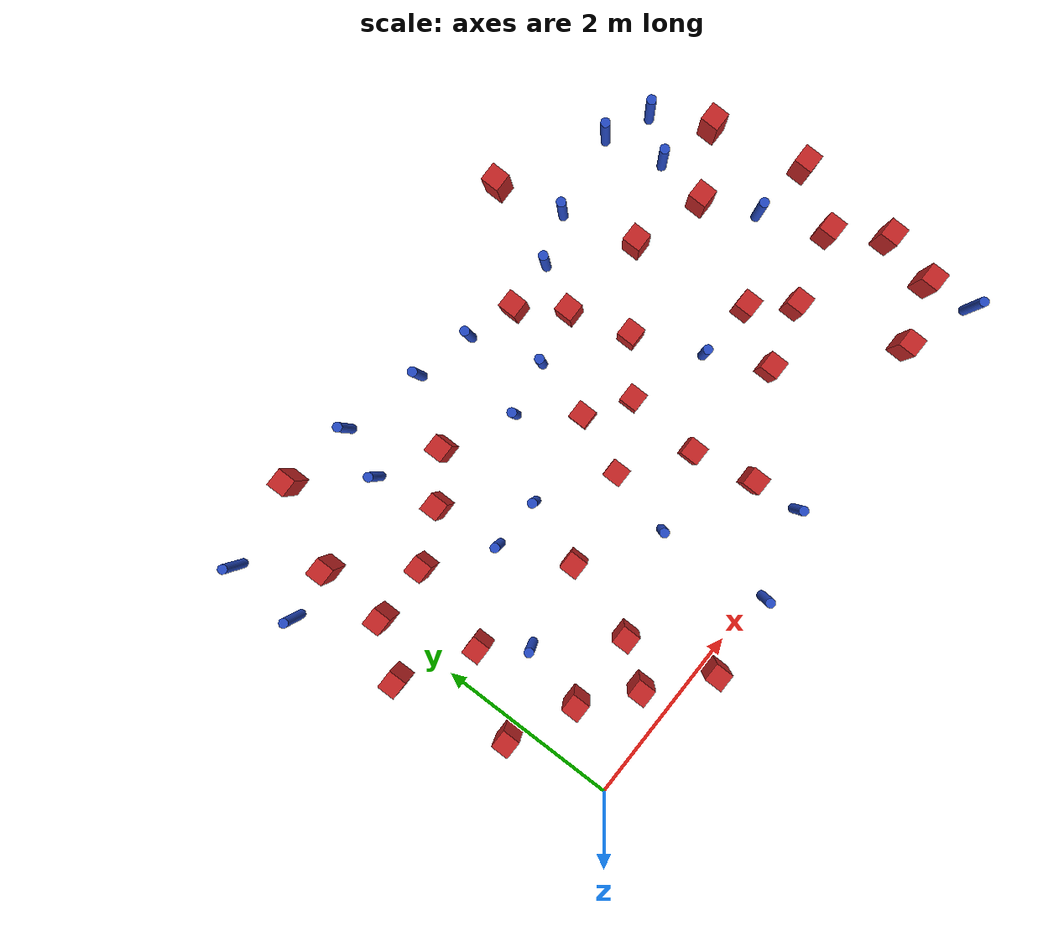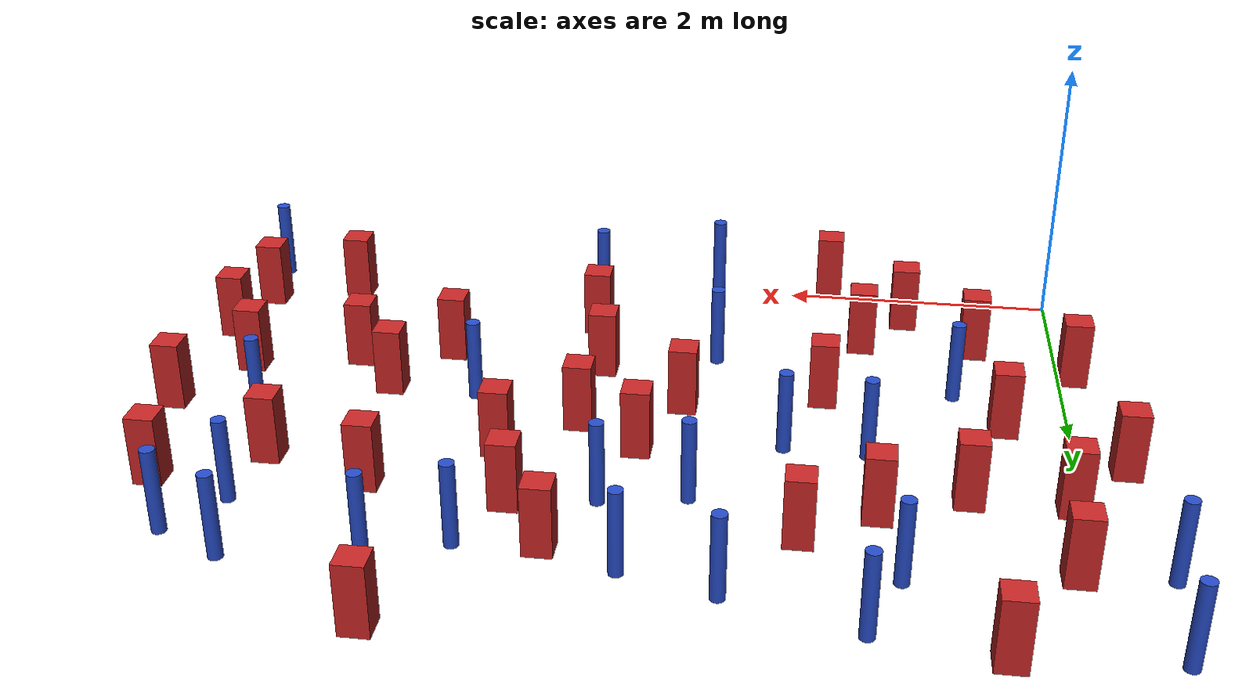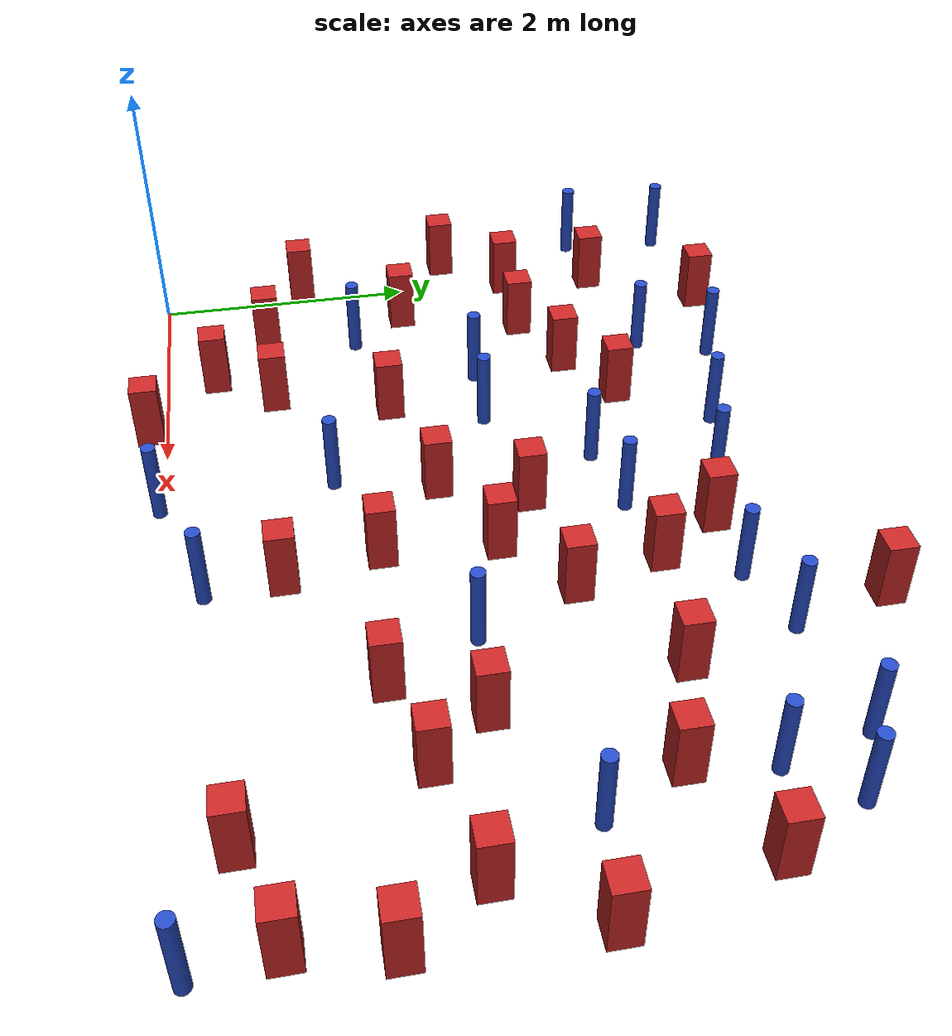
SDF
<sdf version="1.6">
 <model name="dense_45">
  <model name="square_post_obstacle5">
   <static>true</static>
   <pose>-0.324473289553 2.40058144093 -6.11067671241e-07 -5.50515727128e-06 -8.79689657224e-07 2.37013304536e-05</pose>
   <link name="link">
    <pose>0 0 0.25 0 -0 0</pose>
    <inertial>
     <mass>100</mass>
     <inertia>
      <ixx>0.166667</ixx>
      <ixy>0</ixy>
      <ixz>0</ixz>
      <iyy>0.166667</iyy>
      <iyz>0</iyz>
      <izz>0.166667</izz>
     </inertia>
    </inertial>
    <collision name="collision"><geometry><box><size>.2 .2 .5</size></box></geometry></collision>
    <visual name="visual">
     <geometry><box><size>.2 .2 .5</size></box></geometry>
     <material>
      <script><name>Gazebo/Red</name><uri>file://media/materials/scripts/gazebo.material</uri></script>
     </material>
    </visual>
   </link>
  </model>
  <model name="square_post_obstacle10">
   <static>true</static>
   <pose>5.50780573705 0.390450183729 -6.11067671241e-07 -5.50515727128e-06 -8.79689657224e-07 2.37013304536e-05</pose>
   <link name="link">
    <pose>0 0 0.25 0 -0 0</pose>
    <inertial>
     <mass>100</mass>
     <inertia>
      <ixx>0.166667</ixx>
      <ixy>0</ixy>
      <ixz>0</ixz>
      <iyy>0.166667</iyy>
      <iyz>0</iyz>
      <izz>0.166667</izz>
     </inertia>
    </inertial>
    <collision name="collision"><geometry><box><size>.2 .2 .5</size></box></geometry></collision>
    <visual name="visual">
     <geometry><box><size>.2 .2 .5</size></box></geometry>
     <material>
      <script><name>Gazebo/Red</name><uri>file://media/materials/scripts/gazebo.material</uri></script>
     </material>
    </visual>
   </link>
  </model>
  <model name="square_post_obstacle17">
   <static>true</static>
   <pose>0.452096644174 1.9528965727 -6.11067671241e-07 -5.50515727128e-06 -8.79689657224e-07 2.37013304536e-05</pose>
   <link name="link">
    <pose>0 0 0.25 0 -0 0</pose>
    <inertial>
     <mass>100</mass>
     <inertia>
      <ixx>0.166667</ixx>
      <ixy>0</ixy>
      <ixz>0</ixz>
      <iyy>0.166667</iyy>
      <iyz>0</iyz>
      <izz>0.166667</izz>
     </inertia>
    </inertial>
    <collision name="collision"><geometry><box><size>.2 .2 .5</size></box></geometry></collision>
    <visual name="visual">
     <geometry><box><size>.2 .2 .5</size></box></geometry>
     <material>
      <script><name>Gazebo/Red</name><uri>file://media/materials/scripts/gazebo.material</uri></script>
     </material>
    </visual>
   </link>
  </model>
  <model name="pole_obstacle14">
   <static>true</static>
   <pose>2.88527145606 3.95405018933 -9.47619616065e-06 5.49618799738e-07 2.36310414038e-07 -1.55090534814e-07</pose>
   <link name="link">
    <pose>0 0 0.3 0 -0 0</pose>
    <inertial>
     <mass>1</mass>
     <inertia><ixx>0.145833</ixx><ixy>0</ixy><ixz>0</ixz><iyy>0.145833</iyy><iyz>0</iyz><izz>0.125</izz></inertia>
    </inertial>
    <collision name="collision">
     <geometry><cylinder><radius>0.05</radius><length>.6</length></cylinder></geometry>
    </collision>
    <visual name="visual">
     <geometry><cylinder><radius>0.05</radius><length>.6</length></cylinder></geometry>
     <material>
      <script><name>Gazebo/Blue</name><uri>file://media/materials/scripts/gazebo.material</uri></script>
     </material>
    </visual>
   </link>
  </model>
  <model name="square_post_obstacle23">
   <static>true</static>
   <pose>5.94209555654 1.71884393342 -6.11067671241e-07 -5.50515727128e-06 -8.79689657224e-07 2.37013304536e-05</pose>
   <link name="link">
    <pose>0 0 0.25 0 -0 0</pose>
    <inertial>
     <mass>100</mass>
     <inertia>
      <ixx>0.166667</ixx>
      <ixy>0</ixy>
      <ixz>0</ixz>
      <iyy>0.166667</iyy>
      <iyz>0</iyz>
      <izz>0.166667</izz>
     </inertia>
    </inertial>
    <collision name="collision"><geometry><box><size>.2 .2 .5</size></box></geometry></collision>
    <visual name="visual">
     <geometry><box><size>.2 .2 .5</size></box></geometry>
     <material>
      <script><name>Gazebo/Red</name><uri>file://media/materials/scripts/gazebo.material</uri></script>
     </material>
    </visual>
   </link>
  </model>
  <model name="pole_obstacle24">
   <static>true</static>
   <pose>0.778635932585 1.52791973171 -9.47619616065e-06 5.49618799738e-07 2.36310414061e-07 -1.55090534801e-07</pose>
   <link name="link">
    <pose>0 0 0.3 0 -0 0</pose>
    <inertial>
     <mass>1</mass>
     <inertia><ixx>0.145833</ixx><ixy>0</ixy><ixz>0</ixz><iyy>0.145833</iyy><iyz>0</iyz><izz>0.125</izz></inertia>
    </inertial>
    <collision name="collision">
     <geometry><cylinder><radius>0.05</radius><length>.6</length></cylinder></geometry>
    </collision>
    <visual name="visual">
     <geometry><cylinder><radius>0.05</radius><length>.6</length></cylinder></geometry>
     <material>
      <script><name>Gazebo/Blue</name><uri>file://media/materials/scripts/gazebo.material</uri></script>
     </material>
    </visual>
   </link>
  </model>
  <model name="pole_obstacle25">
   <static>true</static>
   <pose>5.67734615379 2.39886731722 -9.47619616065e-06 5.49618799738e-07 2.36310414051e-07 -1.55090534805e-07</pose>
   <link name="link">
    <pose>0 0 0.3 0 -0 0</pose>
    <inertial>
     <mass>1</mass>
     <inertia><ixx>0.145833</ixx><ixy>0</ixy><ixz>0</ixz><iyy>0.145833</iyy><iyz>0</iyz><izz>0.125</izz></inertia>
    </inertial>
    <collision name="collision">
     <geometry><cylinder><radius>0.05</radius><length>.6</length></cylinder></geometry>
    </collision>
    <visual name="visual">
     <geometry><cylinder><radius>0.05</radius><length>.6</length></cylinder></geometry>
     <material>
      <script><name>Gazebo/Blue</name><uri>file://media/materials/scripts/gazebo.material</uri></script>
     </material>
    </visual>
   </link>
  </model>
  <model name="pole_obstacle28">
   <static>true</static>
   <pose>1.38512745922 2.41913687791 -9.47619616065e-06 5.49618799737e-07 2.36310414062e-07 -1.55090534798e-07</pose>
   <link name="link">
    <pose>0 0 0.3 0 -0 0</pose>
    <inertial>
     <mass>1</mass>
     <inertia><ixx>0.145833</ixx><ixy>0</ixy><ixz>0</ixz><iyy>0.145833</iyy><iyz>0</iyz><izz>0.125</izz></inertia>
    </inertial>
    <collision name="collision">
     <geometry><cylinder><radius>0.05</radius><length>.6</length></cylinder></geometry>
    </collision>
    <visual name="visual">
     <geometry><cylinder><radius>0.05</radius><length>.6</length></cylinder></geometry>
     <material>
      <script><name>Gazebo/Blue</name><uri>file://media/materials/scripts/gazebo.material</uri></script>
     </material>
    </visual>
   </link>
  </model>
  <model name="square_post_obstacle36">
   <static>true</static>
   <pose>2.94512084626 2.54637675593 -6.11067671241e-07 -5.50515727128e-06 -8.79689657224e-07 2.37013304536e-05</pose>
   <link name="link">
    <pose>0 0 0.25 0 -0 0</pose>
    <inertial>
     <mass>100</mass>
     <inertia>
      <ixx>0.166667</ixx>
      <ixy>0</ixy>
      <ixz>0</ixz>
      <iyy>0.166667</iyy>
      <iyz>0</iyz>
      <izz>0.166667</izz>
     </inertia>
    </inertial>
    <collision name="collision"><geometry><box><size>.2 .2 .5</size></box></geometry></collision>
    <visual name="visual">
     <geometry><box><size>.2 .2 .5</size></box></geometry>
     <material>
      <script><name>Gazebo/Red</name><uri>file://media/materials/scripts/gazebo.material</uri></script>
     </material>
    </visual>
   </link>
  </model>
  <model name="square_post_obstacle39">
   <static>true</static>
   <pose>4.27816305701 4.66760149722 -6.11067671241e-07 -5.50515727128e-06 -8.79689657224e-07 2.37013304536e-05</pose>
   <link name="link">
    <pose>0 0 0.25 0 -0 0</pose>
    <inertial>
     <mass>100</mass>
     <inertia>
      <ixx>0.166667</ixx>
      <ixy>0</ixy>
      <ixz>0</ixz>
      <iyy>0.166667</iyy>
      <iyz>0</iyz>
      <izz>0.166667</izz>
     </inertia>
    </inertial>
    <collision name="collision"><geometry><box><size>.2 .2 .5</size></box></geometry></collision>
    <visual name="visual">
     <geometry><box><size>.2 .2 .5</size></box></geometry>
     <material>
      <script><name>Gazebo/Red</name><uri>file://media/materials/scripts/gazebo.material</uri></script>
     </material>
    </visual>
   </link>
  </model>
  <model name="pole_obstacle45">
   <static>true</static>
   <pose>2.25597203753 4.11710269118 -9.47619616065e-06 5.49618799738e-07 2.3631041406e-07 -1.55090534801e-07</pose>
   <link name="link">
    <pose>0 0 0.3 0 -0 0</pose>
    <inertial>
     <mass>1</mass>
     <inertia><ixx>0.145833</ixx><ixy>0</ixy><ixz>0</ixz><iyy>0.145833</iyy><iyz>0</iyz><izz>0.125</izz></inertia>
    </inertial>
    <collision name="collision">
     <geometry><cylinder><radius>0.05</radius><length>.6</length></cylinder></geometry>
    </collision>
    <visual name="visual">
     <geometry><cylinder><radius>0.05</radius><length>.6</length></cylinder></geometry>
     <material>
      <script><name>Gazebo/Blue</name><uri>file://media/materials/scripts/gazebo.material</uri></script>
     </material>
    </visual>
   </link>
  </model>
  <model name="square_post_obstacle47">
   <static>true</static>
   <pose>1.71041923077 -0.116103067744 -6.11067671241e-07 -5.50515727128e-06 -8.79689657224e-07 2.37013304536e-05</pose>
   <link name="link">
    <pose>0 0 0.25 0 -0 0</pose>
    <inertial>
     <mass>100</mass>
     <inertia>
      <ixx>0.166667</ixx>
      <ixy>0</ixy>
      <ixz>0</ixz>
      <iyy>0.166667</iyy>
      <iyz>0</iyz>
      <izz>0.166667</izz>
     </inertia>
    </inertial>
    <collision name="collision"><geometry><box><size>.2 .2 .5</size></box></geometry></collision>
    <visual name="visual">
     <geometry><box><size>.2 .2 .5</size></box></geometry>
     <material>
      <script><name>Gazebo/Red</name><uri>file://media/materials/scripts/gazebo.material</uri></script>
     </material>
    </visual>
   </link>
  </model>
  <model name="square_post_obstacle52">
   <static>true</static>
   <pose>0.0740207557246 2.90392620304 -6.11067671241e-07 -5.50515727128e-06 -8.79689657224e-07 2.37013304536e-05</pose>
   <link name="link">
    <pose>0 0 0.25 0 -0 0</pose>
    <inertial>
     <mass>100</mass>
     <inertia>
      <ixx>0.166667</ixx>
      <ixy>0</ixy>
      <ixz>0</ixz>
      <iyy>0.166667</iyy>
      <iyz>0</iyz>
      <izz>0.166667</izz>
     </inertia>
    </inertial>
    <collision name="collision"><geometry><box><size>.2 .2 .5</size></box></geometry></collision>
    <visual name="visual">
     <geometry><box><size>.2 .2 .5</size></box></geometry>
     <material>
      <script><name>Gazebo/Red</name><uri>file://media/materials/scripts/gazebo.material</uri></script>
     </material>
    </visual>
   </link>
  </model>
  <model name="pole_obstacle55">
   <static>true</static>
   <pose>2.60699325427 -0.0461881529547 -9.47619616065e-06 5.49618799738e-07 2.36310414077e-07 -1.55090534792e-07</pose>
   <link name="link">
    <pose>0 0 0.3 0 -0 0</pose>
    <inertial>
     <mass>1</mass>
     <inertia><ixx>0.145833</ixx><ixy>0</ixy><ixz>0</ixz><iyy>0.145833</iyy><iyz>0</iyz><izz>0.125</izz></inertia>
    </inertial>
    <collision name="collision">
     <geometry><cylinder><radius>0.05</radius><length>.6</length></cylinder></geometry>
    </collision>
    <visual name="visual">
     <geometry><cylinder><radius>0.05</radius><length>.6</length></cylinder></geometry>
     <material>
      <script><name>Gazebo/Blue</name><uri>file://media/materials/scripts/gazebo.material</uri></script>
     </material>
    </visual>
   </link>
  </model>
  <model name="square_post_obstacle58">
   <static>true</static>
   <pose>1.4436443372 0.837134800897 -6.11067671241e-07 -5.50515727128e-06 -8.79689657224e-07 2.37013304536e-05</pose>
   <link name="link">
    <pose>0 0 0.25 0 -0 0</pose>
    <inertial>
     <mass>100</mass>
     <inertia>
      <ixx>0.166667</ixx>
      <ixy>0</ixy>
      <ixz>0</ixz>
      <iyy>0.166667</iyy>
      <iyz>0</iyz>
      <izz>0.166667</izz>
     </inertia>
    </inertial>
    <collision name="collision"><geometry><box><size>.2 .2 .5</size></box></geometry></collision>
    <visual name="visual">
     <geometry><box><size>.2 .2 .5</size></box></geometry>
     <material>
      <script><name>Gazebo/Red</name><uri>file://media/materials/scripts/gazebo.material</uri></script>
     </material>
    </visual>
   </link>
  </model>
  <model name="pole_obstacle59">
   <static>true</static>
   <pose>3.1157308667 3.2070856454 -9.47619616065e-06 5.49618799737e-07 2.36310414051e-07 -1.55090534807e-07</pose>
   <link name="link">
    <pose>0 0 0.3 0 -0 0</pose>
    <inertial>
     <mass>1</mass>
     <inertia><ixx>0.145833</ixx><ixy>0</ixy><ixz>0</ixz><iyy>0.145833</iyy><iyz>0</iyz><izz>0.125</izz></inertia>
    </inertial>
    <collision name="collision">
     <geometry><cylinder><radius>0.05</radius><length>.6</length></cylinder></geometry>
    </collision>
    <visual name="visual">
     <geometry><cylinder><radius>0.05</radius><length>.6</length></cylinder></geometry>
     <material>
      <script><name>Gazebo/Blue</name><uri>file://media/materials/scripts/gazebo.material</uri></script>
     </material>
    </visual>
   </link>
  </model>
  <model name="pole_obstacle61">
   <static>true</static>
   <pose>4.46425785206 3.98095553768 -9.47619616065e-06 5.49618799737e-07 2.36310414054e-07 -1.55090534804e-07</pose>
   <link name="link">
    <pose>0 0 0.3 0 -0 0</pose>
    <inertial>
     <mass>1</mass>
     <inertia><ixx>0.145833</ixx><ixy>0</ixy><ixz>0</ixz><iyy>0.145833</iyy><iyz>0</iyz><izz>0.125</izz></inertia>
    </inertial>
    <collision name="collision">
     <geometry><cylinder><radius>0.05</radius><length>.6</length></cylinder></geometry>
    </collision>
    <visual name="visual">
     <geometry><cylinder><radius>0.05</radius><length>.6</length></cylinder></geometry>
     <material>
      <script><name>Gazebo/Blue</name><uri>file://media/materials/scripts/gazebo.material</uri></script>
     </material>
    </visual>
   </link>
  </model>
  <model name="square_post_obstacle70">
   <static>true</static>
   <pose>3.33712573603 1.44381234183 -6.11067671241e-07 -5.50515727128e-06 -8.79689657224e-07 2.37013304536e-05</pose>
   <link name="link">
    <pose>0 0 0.25 0 -0 0</pose>
    <inertial>
     <mass>100</mass>
     <inertia>
      <ixx>0.166667</ixx>
      <ixy>0</ixy>
      <ixz>0</ixz>
      <iyy>0.166667</iyy>
      <iyz>0</iyz>
      <izz>0.166667</izz>
     </inertia>
    </inertial>
    <collision name="collision"><geometry><box><size>.2 .2 .5</size></box></geometry></collision>
    <visual name="visual">
     <geometry><box><size>.2 .2 .5</size></box></geometry>
     <material>
      <script><name>Gazebo/Red</name><uri>file://media/materials/scripts/gazebo.material</uri></script>
     </material>
    </visual>
   </link>
  </model>
  <model name="square_post_obstacle78">
   <static>true</static>
   <pose>6.0857387854 3.31064271042 -6.11067671241e-07 -5.50515727128e-06 -8.79689657224e-07 2.37013304536e-05</pose>
   <link name="link">
    <pose>0 0 0.25 0 -0 0</pose>
    <inertial>
     <mass>100</mass>
     <inertia>
      <ixx>0.166667</ixx>
      <ixy>0</ixy>
      <ixz>0</ixz>
      <iyy>0.166667</iyy>
      <iyz>0</iyz>
      <izz>0.166667</izz>
     </inertia>
    </inertial>
    <collision name="collision"><geometry><box><size>.2 .2 .5</size></box></geometry></collision>
    <visual name="visual">
     <geometry><box><size>.2 .2 .5</size></box></geometry>
     <material>
      <script><name>Gazebo/Red</name><uri>file://media/materials/scripts/gazebo.material</uri></script>
     </material>
    </visual>
   </link>
  </model>
  <model name="pole_obstacle88">
   <static>true</static>
   <pose>1.17429539053 3.82498907046 -9.47619616065e-06 5.49618799737e-07 2.36310414062e-07 -1.55090534798e-07</pose>
   <link name="link">
    <pose>0 0 0.3 0 -0 0</pose>
    <inertial>
     <mass>1</mass>
     <inertia><ixx>0.145833</ixx><ixy>0</ixy><ixz>0</ixz><iyy>0.145833</iyy><iyz>0</iyz><izz>0.125</izz></inertia>
    </inertial>
    <collision name="collision">
     <geometry><cylinder><radius>0.05</radius><length>.6</length></cylinder></geometry>
    </collision>
    <visual name="visual">
     <geometry><cylinder><radius>0.05</radius><length>.6</length></cylinder></geometry>
     <material>
      <script><name>Gazebo/Blue</name><uri>file://media/materials/scripts/gazebo.material</uri></script>
     </material>
    </visual>
   </link>
  </model>
  <model name="pole_obstacle101">
   <static>true</static>
   <pose>3.51958506289 0.244891313505 -9.47619616065e-06 5.49618799737e-07 2.36310414072e-07 -1.55090534794e-07</pose>
   <link name="link">
    <pose>0 0 0.3 0 -0 0</pose>
    <inertial>
     <mass>1</mass>
     <inertia><ixx>0.145833</ixx><ixy>0</ixy><ixz>0</ixz><iyy>0.145833</iyy><iyz>0</iyz><izz>0.125</izz></inertia>
    </inertial>
    <collision name="collision">
     <geometry><cylinder><radius>0.05</radius><length>.6</length></cylinder></geometry>
    </collision>
    <visual name="visual">
     <geometry><cylinder><radius>0.05</radius><length>.6</length></cylinder></geometry>
     <material>
      <script><name>Gazebo/Blue</name><uri>file://media/materials/scripts/gazebo.material</uri></script>
     </material>
    </visual>
   </link>
  </model>
  <model name="square_post_obstacle104">
   <static>true</static>
   <pose>3.88849034571 2.66416063155 -6.11067671241e-07 -5.50515727128e-06 -8.79689657224e-07 2.37013304536e-05</pose>
   <link name="link">
    <pose>0 0 0.25 0 -0 0</pose>
    <inertial>
     <mass>100</mass>
     <inertia>
      <ixx>0.166667</ixx>
      <ixy>0</ixy>
      <ixz>0</ixz>
      <iyy>0.166667</iyy>
      <iyz>0</iyz>
      <izz>0.166667</izz>
     </inertia>
    </inertial>
    <collision name="collision"><geometry><box><size>.2 .2 .5</size></box></geometry></collision>
    <visual name="visual">
     <geometry><box><size>.2 .2 .5</size></box></geometry>
     <material>
      <script><name>Gazebo/Red</name><uri>file://media/materials/scripts/gazebo.material</uri></script>
     </material>
    </visual>
   </link>
  </model>
  <model name="pole_obstacle119">
   <static>true</static>
   <pose>2.53491660991 3.10041996345 -9.47619616065e-06 5.49618799737e-07 2.36310414051e-07 -1.55090534807e-07</pose>
   <link name="link">
    <pose>0 0 0.3 0 -0 0</pose>
    <inertial>
     <mass>1</mass>
     <inertia><ixx>0.145833</ixx><ixy>0</ixy><ixz>0</ixz><iyy>0.145833</iyy><iyz>0</iyz><izz>0.125</izz></inertia>
    </inertial>
    <collision name="collision">
     <geometry><cylinder><radius>0.05</radius><length>.6</length></cylinder></geometry>
    </collision>
    <visual name="visual">
     <geometry><cylinder><radius>0.05</radius><length>.6</length></cylinder></geometry>
     <material>
      <script><name>Gazebo/Blue</name><uri>file://media/materials/scripts/gazebo.material</uri></script>
     </material>
    </visual>
   </link>
  </model>
  <model name="pole_obstacle125">
   <static>true</static>
   <pose>3.94111457804 3.79660329882 -9.47619616065e-06 5.49618799737e-07 2.36310414051e-07 -1.55090534807e-07</pose>
   <link name="link">
    <pose>0 0 0.3 0 -0 0</pose>
    <inertial>
     <mass>1</mass>
     <inertia><ixx>0.145833</ixx><ixy>0</ixy><ixz>0</ixz><iyy>0.145833</iyy><iyz>0</iyz><izz>0.125</izz></inertia>
    </inertial>
    <collision name="collision">
     <geometry><cylinder><radius>0.05</radius><length>.6</length></cylinder></geometry>
    </collision>
    <visual name="visual">
     <geometry><cylinder><radius>0.05</radius><length>.6</length></cylinder></geometry>
     <material>
      <script><name>Gazebo/Blue</name><uri>file://media/materials/scripts/gazebo.material</uri></script>
     </material>
    </visual>
   </link>
  </model>
  <model name="square_post_obstacle116">
   <static>true</static>
   <pose>1.32067235575 3.14931667792 -6.11067671241e-07 -5.50515727128e-06 -8.79689657224e-07 2.37013304536e-05</pose>
   <link name="link">
    <pose>0 0 0.25 0 -0 0</pose>
    <inertial>
     <mass>100</mass>
     <inertia>
      <ixx>0.166667</ixx>
      <ixy>0</ixy>
      <ixz>0</ixz>
      <iyy>0.166667</iyy>
      <iyz>0</iyz>
      <izz>0.166667</izz>
     </inertia>
    </inertial>
    <collision name="collision"><geometry><box><size>.2 .2 .5</size></box></geometry></collision>
    <visual name="visual">
     <geometry><box><size>.2 .2 .5</size></box></geometry>
     <material>
      <script><name>Gazebo/Red</name><uri>file://media/materials/scripts/gazebo.material</uri></script>
     </material>
    </visual>
   </link>
  </model>
  <model name="square_post_obstacle117">
   <static>true</static>
   <pose>1.70868719034 1.70071623866 -6.11067671241e-07 -5.50515727128e-06 -8.79689657224e-07 2.37013304536e-05</pose>
   <link name="link">
    <pose>0 0 0.25 0 -0 0</pose>
    <inertial>
     <mass>100</mass>
     <inertia>
      <ixx>0.166667</ixx>
      <ixy>0</ixy>
      <ixz>0</ixz>
      <iyy>0.166667</iyy>
      <iyz>0</iyz>
      <izz>0.166667</izz>
     </inertia>
    </inertial>
    <collision name="collision"><geometry><box><size>.2 .2 .5</size></box></geometry></collision>
    <visual name="visual">
     <geometry><box><size>.2 .2 .5</size></box></geometry>
     <material>
      <script><name>Gazebo/Red</name><uri>file://media/materials/scripts/gazebo.material</uri></script>
     </material>
    </visual>
   </link>
  </model>
  <model name="pole_obstacle138">
   <static>true</static>
   <pose>1.95520005849 2.39688884807 -9.47619616065e-06 5.49618799737e-07 2.36310414059e-07 -1.550905348e-07</pose>
   <link name="link">
    <pose>0 0 0.3 0 -0 0</pose>
    <inertial>
     <mass>1</mass>
     <inertia><ixx>0.145833</ixx><ixy>0</ixy><ixz>0</ixz><iyy>0.145833</iyy><iyz>0</iyz><izz>0.125</izz></inertia>
    </inertial>
    <collision name="collision">
     <geometry><cylinder><radius>0.05</radius><length>.6</length></cylinder></geometry>
    </collision>
    <visual name="visual">
     <geometry><cylinder><radius>0.05</radius><length>.6</length></cylinder></geometry>
     <material>
      <script><name>Gazebo/Blue</name><uri>file://media/materials/scripts/gazebo.material</uri></script>
     </material>
    </visual>
   </link>
  </model>
  <model name="square_post_obstacle131">
   <static>true</static>
   <pose>4.6648430913 3.19403390546 -6.11067671241e-07 -5.50515727128e-06 -8.79689657224e-07 2.37013304536e-05</pose>
   <link name="link">
    <pose>0 0 0.25 0 -0 0</pose>
    <inertial>
     <mass>100</mass>
     <inertia>
      <ixx>0.166667</ixx>
      <ixy>0</ixy>
      <ixz>0</ixz>
      <iyy>0.166667</iyy>
      <iyz>0</iyz>
      <izz>0.166667</izz>
     </inertia>
    </inertial>
    <collision name="collision"><geometry><box><size>.2 .2 .5</size></box></geometry></collision>
    <visual name="visual">
     <geometry><box><size>.2 .2 .5</size></box></geometry>
     <material>
      <script><name>Gazebo/Red</name><uri>file://media/materials/scripts/gazebo.material</uri></script>
     </material>
    </visual>
   </link>
  </model>
  <model name="pole_obstacle151">
   <static>true</static>
   <pose>2.51562937432 1.19420720858 -9.47619616065e-06 5.49618799737e-07 2.36310414072e-07 -1.55090534793e-07</pose>
   <link name="link">
    <pose>0 0 0.3 0 -0 0</pose>
    <inertial>
     <mass>1</mass>
     <inertia><ixx>0.145833</ixx><ixy>0</ixy><ixz>0</ixz><iyy>0.145833</iyy><iyz>0</iyz><izz>0.125</izz></inertia>
    </inertial>
    <collision name="collision">
     <geometry><cylinder><radius>0.05</radius><length>.6</length></cylinder></geometry>
    </collision>
    <visual name="visual">
     <geometry><cylinder><radius>0.05</radius><length>.6</length></cylinder></geometry>
     <material>
      <script><name>Gazebo/Blue</name><uri>file://media/materials/scripts/gazebo.material</uri></script>
     </material>
    </visual>
   </link>
  </model>
  <model name="square_post_obstacle149">
   <static>true</static>
   <pose>6.32361026845 2.32051091555 -6.11067671241e-07 -5.50515727128e-06 -8.79689657224e-07 2.37013304536e-05</pose>
   <link name="link">
    <pose>0 0 0.25 0 -0 0</pose>
    <inertial>
     <mass>100</mass>
     <inertia>
      <ixx>0.166667</ixx>
      <ixy>0</ixy>
      <ixz>0</ixz>
      <iyy>0.166667</iyy>
      <iyz>0</iyz>
      <izz>0.166667</izz>
     </inertia>
    </inertial>
    <collision name="collision"><geometry><box><size>.2 .2 .5</size></box></geometry></collision>
    <visual name="visual">
     <geometry><box><size>.2 .2 .5</size></box></geometry>
     <material>
      <script><name>Gazebo/Red</name><uri>file://media/materials/scripts/gazebo.material</uri></script>
     </material>
    </visual>
   </link>
  </model>
  <model name="pole_obstacle159">
   <static>true</static>
   <pose>5.34729034997 4.11215038889 -9.47619616065e-06 5.49618799737e-07 2.36310414037e-07 -1.55090534814e-07</pose>
   <link name="link">
    <pose>0 0 0.3 0 -0 0</pose>
    <inertial>
     <mass>1</mass>
     <inertia><ixx>0.145833</ixx><ixy>0</ixy><ixz>0</ixz><iyy>0.145833</iyy><iyz>0</iyz><izz>0.125</izz></inertia>
    </inertial>
    <collision name="collision">
     <geometry><cylinder><radius>0.05</radius><length>.6</length></cylinder></geometry>
    </collision>
    <visual name="visual">
     <geometry><cylinder><radius>0.05</radius><length>.6</length></cylinder></geometry>
     <material>
      <script><name>Gazebo/Blue</name><uri>file://media/materials/scripts/gazebo.material</uri></script>
     </material>
    </visual>
   </link>
  </model>
  <model name="square_post_obstacle153">
   <static>true</static>
   <pose>3.38946890776 2.246996864 -6.11067671241e-07 -5.50515727128e-06 -8.79689657224e-07 2.37013304536e-05</pose>
   <link name="link">
    <pose>0 0 0.25 0 -0 0</pose>
    <inertial>
     <mass>100</mass>
     <inertia>
      <ixx>0.166667</ixx>
      <ixy>0</ixy>
      <ixz>0</ixz>
      <iyy>0.166667</iyy>
      <iyz>0</iyz>
      <izz>0.166667</izz>
     </inertia>
    </inertial>
    <collision name="collision"><geometry><box><size>.2 .2 .5</size></box></geometry></collision>
    <visual name="visual">
     <geometry><box><size>.2 .2 .5</size></box></geometry>
     <material>
      <script><name>Gazebo/Red</name><uri>file://media/materials/scripts/gazebo.material</uri></script>
     </material>
    </visual>
   </link>
  </model>
  <model name="square_post_obstacle154">
   <static>true</static>
   <pose>0.122038826333 3.64884651965 -6.11067671241e-07 -5.50515727128e-06 -8.79689657224e-07 2.37013304536e-05</pose>
   <link name="link">
    <pose>0 0 0.25 0 -0 0</pose>
    <inertial>
     <mass>100</mass>
     <inertia>
      <ixx>0.166667</ixx>
      <ixy>0</ixy>
      <ixz>0</ixz>
      <iyy>0.166667</iyy>
      <iyz>0</iyz>
      <izz>0.166667</izz>
     </inertia>
    </inertial>
    <collision name="collision"><geometry><box><size>.2 .2 .5</size></box></geometry></collision>
    <visual name="visual">
     <geometry><box><size>.2 .2 .5</size></box></geometry>
     <material>
      <script><name>Gazebo/Red</name><uri>file://media/materials/scripts/gazebo.material</uri></script>
     </material>
    </visual>
   </link>
  </model>
  <model name="square_post_obstacle155">
   <static>true</static>
   <pose>-0.102219710298 1.15093083028 -6.11067671241e-07 -5.50515727128e-06 -8.79689657224e-07 2.37013304536e-05</pose>
   <link name="link">
    <pose>0 0 0.25 0 -0 0</pose>
    <inertial>
     <mass>100</mass>
     <inertia>
      <ixx>0.166667</ixx>
      <ixy>0</ixy>
      <ixz>0</ixz>
      <iyy>0.166667</iyy>
      <iyz>0</iyz>
      <izz>0.166667</izz>
     </inertia>
    </inertial>
    <collision name="collision"><geometry><box><size>.2 .2 .5</size></box></geometry></collision>
    <visual name="visual">
     <geometry><box><size>.2 .2 .5</size></box></geometry>
     <material>
      <script><name>Gazebo/Red</name><uri>file://media/materials/scripts/gazebo.material</uri></script>
     </material>
    </visual>
   </link>
  </model>
  <model name="square_post_obstacle158">
   <static>true</static>
   <pose>4.49289017668 1.33861304581 -6.11067671241e-07 -5.50515727128e-06 -8.79689657224e-07 2.37013304536e-05</pose>
   <link name="link">
    <pose>0 0 0.25 0 -0 0</pose>
    <inertial>
     <mass>100</mass>
     <inertia>
      <ixx>0.166667</ixx>
      <ixy>0</ixy>
      <ixz>0</ixz>
      <iyy>0.166667</iyy>
      <iyz>0</iyz>
      <izz>0.166667</izz>
     </inertia>
    </inertial>
    <collision name="collision"><geometry><box><size>.2 .2 .5</size></box></geometry></collision>
    <visual name="visual">
     <geometry><box><size>.2 .2 .5</size></box></geometry>
     <material>
      <script><name>Gazebo/Red</name><uri>file://media/materials/scripts/gazebo.material</uri></script>
     </material>
    </visual>
   </link>
  </model>
  <model name="square_post_obstacle159">
   <static>true</static>
   <pose>3.47607828429 0.774870576373 -6.11067671241e-07 -5.50515727128e-06 -8.79689657224e-07 2.37013304536e-05</pose>
   <link name="link">
    <pose>0 0 0.25 0 -0 0</pose>
    <inertial>
     <mass>100</mass>
     <inertia>
      <ixx>0.166667</ixx>
      <ixy>0</ixy>
      <ixz>0</ixz>
      <iyy>0.166667</iyy>
      <iyz>0</iyz>
      <izz>0.166667</izz>
     </inertia>
    </inertial>
    <collision name="collision"><geometry><box><size>.2 .2 .5</size></box></geometry></collision>
    <visual name="visual">
     <geometry><box><size>.2 .2 .5</size></box></geometry>
     <material>
      <script><name>Gazebo/Red</name><uri>file://media/materials/scripts/gazebo.material</uri></script>
     </material>
    </visual>
   </link>
  </model>
  <model name="pole_obstacle168">
   <static>true</static>
   <pose>-0.411372506225 4.40053298909 -9.47619616065e-06 5.49618799737e-07 2.36310414065e-07 -1.55090534796e-07</pose>
   <link name="link">
    <pose>0 0 0.3 0 -0 0</pose>
    <inertial>
     <mass>1</mass>
     <inertia><ixx>0.145833</ixx><ixy>0</ixy><ixz>0</ixz><iyy>0.145833</iyy><iyz>0</iyz><izz>0.125</izz></inertia>
    </inertial>
    <collision name="collision">
     <geometry><cylinder><radius>0.05</radius><length>.6</length></cylinder></geometry>
    </collision>
    <visual name="visual">
     <geometry><cylinder><radius>0.05</radius><length>.6</length></cylinder></geometry>
     <material>
      <script><name>Gazebo/Blue</name><uri>file://media/materials/scripts/gazebo.material</uri></script>
     </material>
    </visual>
   </link>
  </model>
  <model name="pole_obstacle173">
   <static>true</static>
   <pose>-0.462500453812 3.60466164947 -9.47619616065e-06 5.49618799737e-07 2.36310414073e-07 -1.55090534793e-07</pose>
   <link name="link">
    <pose>0 0 0.3 0 -0 0</pose>
    <inertial>
     <mass>1</mass>
     <inertia><ixx>0.145833</ixx><ixy>0</ixy><ixz>0</ixz><iyy>0.145833</iyy><iyz>0</iyz><izz>0.125</izz></inertia>
    </inertial>
    <collision name="collision">
     <geometry><cylinder><radius>0.05</radius><length>.6</length></cylinder></geometry>
    </collision>
    <visual name="visual">
     <geometry><cylinder><radius>0.05</radius><length>.6</length></cylinder></geometry>
     <material>
      <script><name>Gazebo/Blue</name><uri>file://media/materials/scripts/gazebo.material</uri></script>
     </material>
    </visual>
   </link>
  </model>
  <model name="square_post_obstacle164">
   <static>true</static>
   <pose>3.39023469579 3.76610710695 -6.11067671241e-07 -5.50515727128e-06 -8.79689657224e-07 2.37013304536e-05</pose>
   <link name="link">
    <pose>0 0 0.25 0 -0 0</pose>
    <inertial>
     <mass>100</mass>
     <inertia>
      <ixx>0.166667</ixx>
      <ixy>0</ixy>
      <ixz>0</ixz>
      <iyy>0.166667</iyy>
      <iyz>0</iyz>
      <izz>0.166667</izz>
     </inertia>
    </inertial>
    <collision name="collision"><geometry><box><size>.2 .2 .5</size></box></geometry></collision>
    <visual name="visual">
     <geometry><box><size>.2 .2 .5</size></box></geometry>
     <material>
      <script><name>Gazebo/Red</name><uri>file://media/materials/scripts/gazebo.material</uri></script>
     </material>
    </visual>
   </link>
  </model>
  <model name="square_post_obstacle168">
   <static>true</static>
   <pose>6.15805234059 0.610590073645 -6.11067671241e-07 -5.50515727128e-06 -8.79689657224e-07 2.37013304536e-05</pose>
   <link name="link">
    <pose>0 0 0.25 0 -0 0</pose>
    <inertial>
     <mass>100</mass>
     <inertia>
      <ixx>0.166667</ixx>
      <ixy>0</ixy>
      <ixz>0</ixz>
      <iyy>0.166667</iyy>
      <iyz>0</iyz>
      <izz>0.166667</izz>
     </inertia>
    </inertial>
    <collision name="collision"><geometry><box><size>.2 .2 .5</size></box></geometry></collision>
    <visual name="visual">
     <geometry><box><size>.2 .2 .5</size></box></geometry>
     <material>
      <script><name>Gazebo/Red</name><uri>file://media/materials/scripts/gazebo.material</uri></script>
     </material>
    </visual>
   </link>
  </model>
  <model name="pole_obstacle179">
   <static>true</static>
   <pose>4.19909709715 1.95506096052 -9.47619616065e-06 5.49618799737e-07 2.36310414075e-07 -1.55090534793e-07</pose>
   <link name="link">
    <pose>0 0 0.3 0 -0 0</pose>
    <inertial>
     <mass>1</mass>
     <inertia><ixx>0.145833</ixx><ixy>0</ixy><ixz>0</ixz><iyy>0.145833</iyy><iyz>0</iyz><izz>0.125</izz></inertia>
    </inertial>
    <collision name="collision">
     <geometry><cylinder><radius>0.05</radius><length>.6</length></cylinder></geometry>
    </collision>
    <visual name="visual">
     <geometry><cylinder><radius>0.05</radius><length>.6</length></cylinder></geometry>
     <material>
      <script><name>Gazebo/Blue</name><uri>file://media/materials/scripts/gazebo.material</uri></script>
     </material>
    </visual>
   </link>
  </model>
  <model name="square_post_obstacle170">
   <static>true</static>
   <pose>4.82887079865 1.91430204378 -6.11067671241e-07 -5.50515727128e-06 -8.79689657224e-07 2.37013304536e-05</pose>
   <link name="link">
    <pose>0 0 0.25 0 -0 0</pose>
    <inertial>
     <mass>100</mass>
     <inertia>
      <ixx>0.166667</ixx>
      <ixy>0</ixy>
      <ixz>0</ixz>
      <iyy>0.166667</iyy>
      <iyz>0</iyz>
      <izz>0.166667</izz>
     </inertia>
    </inertial>
    <collision name="collision"><geometry><box><size>.2 .2 .5</size></box></geometry></collision>
    <visual name="visual">
     <geometry><box><size>.2 .2 .5</size></box></geometry>
     <material>
      <script><name>Gazebo/Red</name><uri>file://media/materials/scripts/gazebo.material</uri></script>
     </material>
    </visual>
   </link>
  </model>
  <model name="pole_obstacle185">
   <static>true</static>
   <pose>1.37696077413 4.3644454165 -9.47619616065e-06 5.49618799737e-07 2.36310414061e-07 -1.550905348e-07</pose>
   <link name="link">
    <pose>0 0 0.3 0 -0 0</pose>
    <inertial>
     <mass>1</mass>
     <inertia><ixx>0.145833</ixx><ixy>0</ixy><ixz>0</ixz><iyy>0.145833</iyy><iyz>0</iyz><izz>0.125</izz></inertia>
    </inertial>
    <collision name="collision">
     <geometry><cylinder><radius>0.05</radius><length>.6</length></cylinder></geometry>
    </collision>
    <visual name="visual">
     <geometry><cylinder><radius>0.05</radius><length>.6</length></cylinder></geometry>
     <material>
      <script><name>Gazebo/Blue</name><uri>file://media/materials/scripts/gazebo.material</uri></script>
     </material>
    </visual>
   </link>
  </model>
  <model name="square_post_obstacle174">
   <static>true</static>
   <pose>0.734597796704 2.89701601995 -6.11067671241e-07 -5.50515727128e-06 -8.79689657224e-07 2.37013304536e-05</pose>
   <link name="link">
    <pose>0 0 0.25 0 -0 0</pose>
    <inertial>
     <mass>100</mass>
     <inertia>
      <ixx>0.166667</ixx>
      <ixy>0</ixy>
      <ixz>0</ixz>
      <iyy>0.166667</iyy>
      <iyz>0</iyz>
      <izz>0.166667</izz>
     </inertia>
    </inertial>
    <collision name="collision"><geometry><box><size>.2 .2 .5</size></box></geometry></collision>
    <visual name="visual">
     <geometry><box><size>.2 .2 .5</size></box></geometry>
     <material>
      <script><name>Gazebo/Red</name><uri>file://media/materials/scripts/gazebo.material</uri></script>
     </material>
    </visual>
   </link>
  </model>
  <model name="square_post_obstacle188">
   <static>true</static>
   <pose>2.69451832723 1.92200692665 -6.11067671241e-07 -5.50515727128e-06 -8.79689657224e-07 2.37013304536e-05</pose>
   <link name="link">
    <pose>0 0 0.25 0 -0 0</pose>
    <inertial>
     <mass>100</mass>
     <inertia>
      <ixx>0.166667</ixx>
      <ixy>0</ixy>
      <ixz>0</ixz>
      <iyy>0.166667</iyy>
      <iyz>0</iyz>
      <izz>0.166667</izz>
     </inertia>
    </inertial>
    <collision name="collision"><geometry><box><size>.2 .2 .5</size></box></geometry></collision>
    <visual name="visual">
     <geometry><box><size>.2 .2 .5</size></box></geometry>
     <material>
      <script><name>Gazebo/Red</name><uri>file://media/materials/scripts/gazebo.material</uri></script>
     </material>
    </visual>
   </link>
  </model>
  <model name="square_post_obstacle189">
   <static>true</static>
   <pose>5.15784518698 1.52004080446 -6.11067671241e-07 -5.50515727128e-06 -8.79689657224e-07 2.37013304536e-05</pose>
   <link name="link">
    <pose>0 0 0.25 0 -0 0</pose>
    <inertial>
     <mass>100</mass>
     <inertia>
      <ixx>0.166667</ixx>
      <ixy>0</ixy>
      <ixz>0</ixz>
      <iyy>0.166667</iyy>
      <iyz>0</iyz>
      <izz>0.166667</izz>
     </inertia>
    </inertial>
    <collision name="collision"><geometry><box><size>.2 .2 .5</size></box></geometry></collision>
    <visual name="visual">
     <geometry><box><size>.2 .2 .5</size></box></geometry>
     <material>
      <script><name>Gazebo/Red</name><uri>file://media/materials/scripts/gazebo.material</uri></script>
     </material>
    </visual>
   </link>
  </model>
  <model name="square_post_obstacle194">
   <static>true</static>
   <pose>1.80724979144 3.47046976835 -6.11067671241e-07 -5.50515727128e-06 -8.79689657224e-07 2.37013304536e-05</pose>
   <link name="link">
    <pose>0 0 0.25 0 -0 0</pose>
    <inertial>
     <mass>100</mass>
     <inertia>
      <ixx>0.166667</ixx>
      <ixy>0</ixy>
      <ixz>0</ixz>
      <iyy>0.166667</iyy>
      <iyz>0</iyz>
      <izz>0.166667</izz>
     </inertia>
    </inertial>
    <collision name="collision"><geometry><box><size>.2 .2 .5</size></box></geometry></collision>
    <visual name="visual">
     <geometry><box><size>.2 .2 .5</size></box></geometry>
     <material>
      <script><name>Gazebo/Red</name><uri>file://media/materials/scripts/gazebo.material</uri></script>
     </material>
    </visual>
   </link>
  </model>
  <model name="pole_obstacle190">
   <static>true</static>
   <pose>5.49752030581 3.49306853193 -9.47619616065e-06 5.49618799738e-07 2.36310414051e-07 -1.55090534805e-07</pose>
   <link name="link">
    <pose>0 0 0.3 0 -0 0</pose>
    <inertial>
     <mass>1</mass>
     <inertia><ixx>0.145833</ixx><ixy>0</ixy><ixz>0</ixz><iyy>0.145833</iyy><iyz>0</iyz><izz>0.125</izz></inertia>
    </inertial>
    <collision name="collision">
     <geometry><cylinder><radius>0.05</radius><length>.6</length></cylinder></geometry>
    </collision>
    <visual name="visual">
     <geometry><cylinder><radius>0.05</radius><length>.6</length></cylinder></geometry>
     <material>
      <script><name>Gazebo/Blue</name><uri>file://media/materials/scripts/gazebo.material</uri></script>
     </material>
    </visual>
   </link>
  </model>
  <model name="pole_obstacle191">
   <static>true</static>
   <pose>5.80147938704 3.89252800968 -9.47619616065e-06 5.49618799738e-07 2.36310414051e-07 -1.55090534805e-07</pose>
   <link name="link">
    <pose>0 0 0.3 0 -0 0</pose>
    <inertial>
     <mass>1</mass>
     <inertia><ixx>0.145833</ixx><ixy>0</ixy><ixz>0</ixz><iyy>0.145833</iyy><iyz>0</iyz><izz>0.125</izz></inertia>
    </inertial>
    <collision name="collision">
     <geometry><cylinder><radius>0.05</radius><length>.6</length></cylinder></geometry>
    </collision>
    <visual name="visual">
     <geometry><cylinder><radius>0.05</radius><length>.6</length></cylinder></geometry>
     <material>
      <script><name>Gazebo/Blue</name><uri>file://media/materials/scripts/gazebo.material</uri></script>
     </material>
    </visual>
   </link>
  </model>
  <model name="pole_obstacle195">
   <static>true</static>
   <pose>6.22376490158 0.100168168755 -9.47619616065e-06 5.49618799737e-07 2.36310414064e-07 -1.55090534798e-07</pose>
   <link name="link">
    <pose>0 0 0.3 0 -0 0</pose>
    <inertial>
     <mass>1</mass>
     <inertia><ixx>0.145833</ixx><ixy>0</ixy><ixz>0</ixz><iyy>0.145833</iyy><iyz>0</iyz><izz>0.125</izz></inertia>
    </inertial>
    <collision name="collision">
     <geometry><cylinder><radius>0.05</radius><length>.6</length></cylinder></geometry>
    </collision>
    <visual name="visual">
     <geometry><cylinder><radius>0.05</radius><length>.6</length></cylinder></geometry>
     <material>
      <script><name>Gazebo/Blue</name><uri>file://media/materials/scripts/gazebo.material</uri></script>
     </material>
    </visual>
   </link>
  </model>
  <model name="square_post_obstacle205">
   <static>true</static>
   <pose>0.587636137258 4.49075638458 -6.11067671241e-07 -5.50515727128e-06 -8.79689657224e-07 2.37013304536e-05</pose>
   <link name="link">
    <pose>0 0 0.25 0 -0 0</pose>
    <inertial>
     <mass>100</mass>
     <inertia>
      <ixx>0.166667</ixx>
      <ixy>0</ixy>
      <ixz>0</ixz>
      <iyy>0.166667</iyy>
      <iyz>0</iyz>
      <izz>0.166667</izz>
     </inertia>
    </inertial>
    <collision name="collision"><geometry><box><size>.2 .2 .5</size></box></geometry></collision>
    <visual name="visual">
     <geometry><box><size>.2 .2 .5</size></box></geometry>
     <material>
      <script><name>Gazebo/Red</name><uri>file://media/materials/scripts/gazebo.material</uri></script>
     </material>
    </visual>
   </link>
  </model>
  <model name="square_post_obstacle206">
   <static>true</static>
   <pose>0.604187094404 0.822273802538 -6.11067671241e-07 -5.50515727128e-06 -8.79689657224e-07 2.37013304536e-05</pose>
   <link name="link">
    <pose>0 0 0.25 0 -0 0</pose>
    <inertial>
     <mass>100</mass>
     <inertia>
      <ixx>0.166667</ixx>
      <ixy>0</ixy>
      <ixz>0</ixz>
      <iyy>0.166667</iyy>
      <iyz>0</iyz>
      <izz>0.166667</izz>
     </inertia>
    </inertial>
    <collision name="collision"><geometry><box><size>.2 .2 .5</size></box></geometry></collision>
    <visual name="visual">
     <geometry><box><size>.2 .2 .5</size></box></geometry>
     <material>
      <script><name>Gazebo/Red</name><uri>file://media/materials/scripts/gazebo.material</uri></script>
     </material>
    </visual>
   </link>
  </model>
  <model name="square_post_obstacle212">
   <static>true</static>
   <pose>6.26703057315 1.19950469753 -6.11067671241e-07 -5.50515727128e-06 -8.79689657224e-07 2.37013304536e-05</pose>
   <link name="link">
    <pose>0 0 0.25 0 -0 0</pose>
    <inertial>
     <mass>100</mass>
     <inertia>
      <ixx>0.166667</ixx>
      <ixy>0</ixy>
      <ixz>0</ixz>
      <iyy>0.166667</iyy>
      <iyz>0</iyz>
      <izz>0.166667</izz>
     </inertia>
    </inertial>
    <collision name="collision"><geometry><box><size>.2 .2 .5</size></box></geometry></collision>
    <visual name="visual">
     <geometry><box><size>.2 .2 .5</size></box></geometry>
     <material>
      <script><name>Gazebo/Red</name><uri>file://media/materials/scripts/gazebo.material</uri></script>
     </material>
    </visual>
   </link>
  </model>
  <model name="square_post_obstacle216">
   <static>true</static>
   <pose>1.11981551568 0.393397463396 -6.11067671241e-07 -5.50515727128e-06 -8.79689657224e-07 2.37013304536e-05</pose>
   <link name="link">
    <pose>0 0 0.25 0 -0 0</pose>
    <inertial>
     <mass>100</mass>
     <inertia>
      <ixx>0.166667</ixx>
      <ixy>0</ixy>
      <ixz>0</ixz>
      <iyy>0.166667</iyy>
      <iyz>0</iyz>
      <izz>0.166667</izz>
     </inertia>
    </inertial>
    <collision name="collision"><geometry><box><size>.2 .2 .5</size></box></geometry></collision>
    <visual name="visual">
     <geometry><box><size>.2 .2 .5</size></box></geometry>
     <material>
      <script><name>Gazebo/Red</name><uri>file://media/materials/scripts/gazebo.material</uri></script>
     </material>
    </visual>
   </link>
  </model>
  <model name="square_post_obstacle221">
   <static>true</static>
   <pose>3.70096178816 3.3052350326 -6.11067671241e-07 -5.50515727128e-06 -8.79689657224e-07 2.37013304536e-05</pose>
   <link name="link">
    <pose>0 0 0.25 0 -0 0</pose>
    <inertial>
     <mass>100</mass>
     <inertia>
      <ixx>0.166667</ixx>
      <ixy>0</ixy>
      <ixz>0</ixz>
      <iyy>0.166667</iyy>
      <iyz>0</iyz>
      <izz>0.166667</izz>
     </inertia>
    </inertial>
    <collision name="collision"><geometry><box><size>.2 .2 .5</size></box></geometry></collision>
    <visual name="visual">
     <geometry><box><size>.2 .2 .5</size></box></geometry>
     <material>
      <script><name>Gazebo/Red</name><uri>file://media/materials/scripts/gazebo.material</uri></script>
     </material>
    </visual>
   </link>
  </model>
  <model name="square_post_obstacle228">
   <static>true</static>
   <pose>5.4088299502 2.94214997688 -6.11067671241e-07 -5.50515727128e-06 -8.79689657224e-07 2.37013304536e-05</pose>
   <link name="link">
    <pose>0 0 0.25 0 -0 0</pose>
    <inertial>
     <mass>100</mass>
     <inertia>
      <ixx>0.166667</ixx>
      <ixy>0</ixy>
      <ixz>0</ixz>
      <iyy>0.166667</iyy>
      <iyz>0</iyz>
      <izz>0.166667</izz>
     </inertia>
    </inertial>
    <collision name="collision"><geometry><box><size>.2 .2 .5</size></box></geometry></collision>
    <visual name="visual">
     <geometry><box><size>.2 .2 .5</size></box></geometry>
     <material>
      <script><name>Gazebo/Red</name><uri>file://media/materials/scripts/gazebo.material</uri></script>
     </material>
    </visual>
   </link>
  </model>
 </model>
</sdf>
